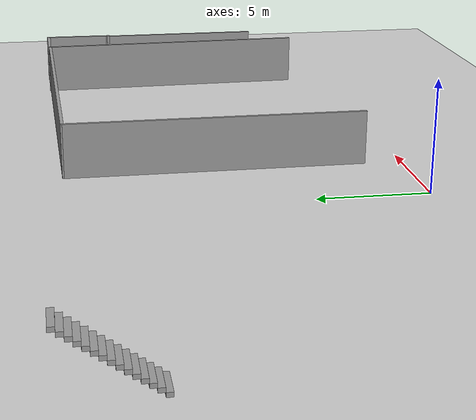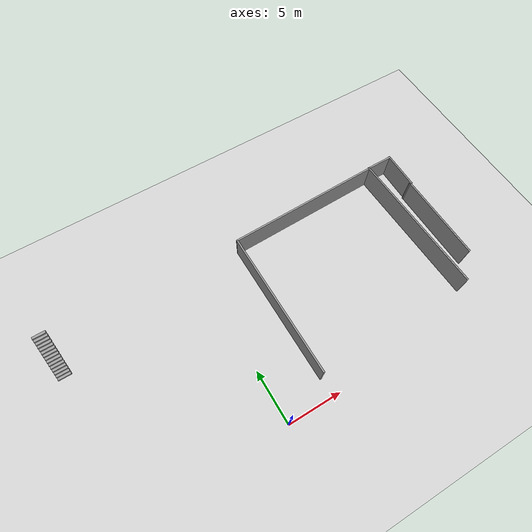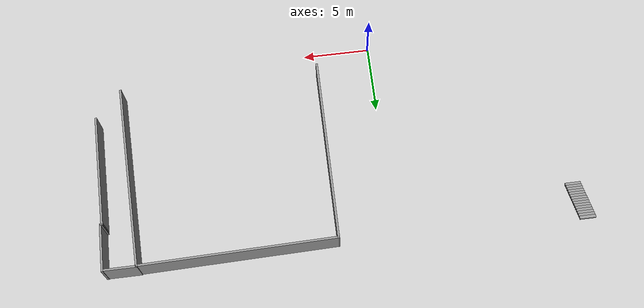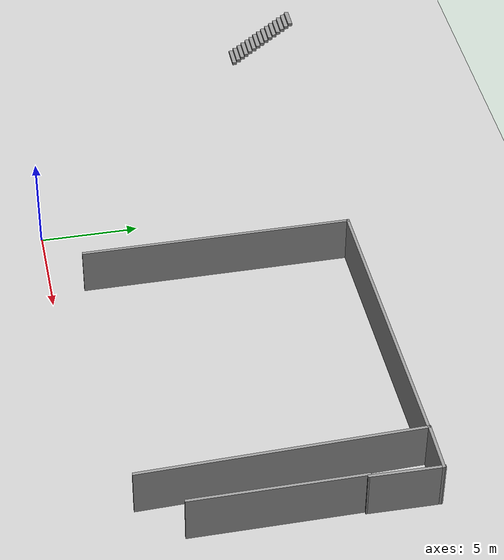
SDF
<sdf version="1.6">
 <world name="default">
  <model name="ground_plane">
   <static>1</static>
   <link name="link">
    <collision name="collision">
     <geometry><plane><normal>0 0 1</normal><size>100 100</size></plane></geometry>
     <surface>
      <contact><collide_bitmask>65535</collide_bitmask></contact>
      <friction><ode><mu>100</mu><mu2>50</mu2></ode></friction>
     </surface>
    </collision>
    <visual name="visual">
     <cast_shadows>0</cast_shadows>
     <geometry><plane><normal>0 0 1</normal><size>100 100</size></plane></geometry>
     <material>
      <script><uri>file://media/materials/scripts/gazebo.material</uri><name>Gazebo/Grey</name></script>
     </material>
    </visual>
   </link>
  </model>
  <model name="six_floor">
   <link name="Stairs_1">
    <visual name="Stairs_1_Visual_4">
     <pose>-15.4859 11.9319 0.75 0 -0 -3.14159</pose>
     <geometry><box><size>1.18504 0.233333 0.166667</size></box></geometry>
     <material>
      <script><uri>file://media/materials/scripts/gazebo.material</uri><name>Gazebo/Grey</name></script>
      <ambient>1 1 1 1</ambient>
     </material>
     <meta><layer>0</layer></meta>
    </visual>
    <visual name="Stairs_1_Visual_0">
     <pose>-15.4859 10.9986 0.083333 0 -0 -3.14159</pose>
     <geometry><box><size>1.18504 0.233333 0.166667</size></box></geometry>
     <material>
      <script><uri>file://media/materials/scripts/gazebo.material</uri><name>Gazebo/Grey</name></script>
      <ambient>1 1 1 1</ambient>
     </material>
     <meta><layer>0</layer></meta>
    </visual>
    <visual name="Stairs_1_Visual_1">
     <pose>-15.4859 11.2319 0.25 0 -0 -3.14159</pose>
     <geometry><box><size>1.18504 0.233333 0.166667</size></box></geometry>
     <material>
      <script><uri>file://media/materials/scripts/gazebo.material</uri><name>Gazebo/Grey</name></script>
      <ambient>1 1 1 1</ambient>
     </material>
     <meta><layer>0</layer></meta>
    </visual>
    <visual name="Stairs_1_Visual_2">
     <pose>-15.4859 11.4653 0.416667 0 -0 -3.14159</pose>
     <geometry><box><size>1.18504 0.233333 0.166667</size></box></geometry>
     <material>
      <script><uri>file://media/materials/scripts/gazebo.material</uri><name>Gazebo/Grey</name></script>
      <ambient>1 1 1 1</ambient>
     </material>
     <meta><layer>0</layer></meta>
    </visual>
    <visual name="Stairs_1_Visual_3">
     <pose>-15.4859 11.6986 0.583333 0 -0 -3.14159</pose>
     <geometry><box><size>1.18504 0.233333 0.166667</size></box></geometry>
     <material>
      <script><uri>file://media/materials/scripts/gazebo.material</uri><name>Gazebo/Grey</name></script>
      <ambient>1 1 1 1</ambient>
     </material>
     <meta><layer>0</layer></meta>
    </visual>
    <visual name="Stairs_1_Visual_5">
     <pose>-15.4859 12.1653 0.916667 0 -0 -3.14159</pose>
     <geometry><box><size>1.18504 0.233333 0.166667</size></box></geometry>
     <material>
      <script><uri>file://media/materials/scripts/gazebo.material</uri><name>Gazebo/Grey</name></script>
      <ambient>1 1 1 1</ambient>
     </material>
     <meta><layer>0</layer></meta>
    </visual>
    <visual name="Stairs_1_Visual_6">
     <pose>-15.4859 12.3986 1.08333 0 -0 -3.14159</pose>
     <geometry><box><size>1.18504 0.233333 0.166667</size></box></geometry>
     <material>
      <script><uri>file://media/materials/scripts/gazebo.material</uri><name>Gazebo/Grey</name></script>
      <ambient>1 1 1 1</ambient>
     </material>
     <meta><layer>0</layer></meta>
    </visual>
    <visual name="Stairs_1_Visual_7">
     <pose>-15.4859 12.6319 1.25 0 -0 -3.14159</pose>
     <geometry><box><size>1.18504 0.233333 0.166667</size></box></geometry>
     <material>
      <script><uri>file://media/materials/scripts/gazebo.material</uri><name>Gazebo/Grey</name></script>
      <ambient>1 1 1 1</ambient>
     </material>
     <meta><layer>0</layer></meta>
    </visual>
    <visual name="Stairs_1_Visual_8">
     <pose>-15.4859 12.8653 1.41667 0 -0 -3.14159</pose>
     <geometry><box><size>1.18504 0.233333 0.166667</size></box></geometry>
     <material>
      <script><uri>file://media/materials/scripts/gazebo.material</uri><name>Gazebo/Grey</name></script>
      <ambient>1 1 1 1</ambient>
     </material>
     <meta><layer>0</layer></meta>
    </visual>
    <visual name="Stairs_1_Visual_9">
     <pose>-15.4859 13.0986 1.58333 0 -0 -3.14159</pose>
     <geometry><box><size>1.18504 0.233333 0.166667</size></box></geometry>
     <material>
      <script><uri>file://media/materials/scripts/gazebo.material</uri><name>Gazebo/Grey</name></script>
      <ambient>1 1 1 1</ambient>
     </material>
     <meta><layer>0</layer></meta>
    </visual>
    <visual name="Stairs_1_Visual_10">
     <pose>-15.4859 13.3319 1.75 0 -0 -3.14159</pose>
     <geometry><box><size>1.18504 0.233333 0.166667</size></box></geometry>
     <material>
      <script><uri>file://media/materials/scripts/gazebo.material</uri><name>Gazebo/Grey</name></script>
      <ambient>1 1 1 1</ambient>
     </material>
     <meta><layer>0</layer></meta>
    </visual>
    <visual name="Stairs_1_Visual_11">
     <pose>-15.4859 13.5653 1.91667 0 -0 -3.14159</pose>
     <geometry><box><size>1.18504 0.233333 0.166667</size></box></geometry>
     <material>
      <script><uri>file://media/materials/scripts/gazebo.material</uri><name>Gazebo/Grey</name></script>
      <ambient>1 1 1 1</ambient>
     </material>
     <meta><layer>0</layer></meta>
    </visual>
    <visual name="Stairs_1_Visual_12">
     <pose>-15.4859 13.7986 2.08333 0 -0 -3.14159</pose>
     <geometry><box><size>1.18504 0.233333 0.166667</size></box></geometry>
     <material>
      <script><uri>file://media/materials/scripts/gazebo.material</uri><name>Gazebo/Grey</name></script>
      <ambient>1 1 1 1</ambient>
     </material>
     <meta><layer>0</layer></meta>
    </visual>
    <visual name="Stairs_1_Visual_13">
     <pose>-15.4859 14.0319 2.25 0 -0 -3.14159</pose>
     <geometry><box><size>1.18504 0.233333 0.166667</size></box></geometry>
     <material>
      <script><uri>file://media/materials/scripts/gazebo.material</uri><name>Gazebo/Grey</name></script>
      <ambient>1 1 1 1</ambient>
     </material>
     <meta><layer>0</layer></meta>
    </visual>
    <visual name="Stairs_1_Visual_14">
     <pose>-15.4859 14.2653 2.41667 0 -0 -3.14159</pose>
     <geometry><box><size>1.18504 0.233333 0.166667</size></box></geometry>
     <material>
      <script><uri>file://media/materials/scripts/gazebo.material</uri><name>Gazebo/Grey</name></script>
      <ambient>1 1 1 1</ambient>
     </material>
     <meta><layer>0</layer></meta>
    </visual>
    <collision name="Stairs_1_Collision_8">
     <pose>-15.4859 12.8653 1.41667 0 0 -3.14159</pose>
     <geometry><box><size>1.18504 0.233333 0.166667</size></box></geometry>
     <surface>
      <friction>
       <ode><mu>1</mu><mu2>1</mu2><fdir1>0 0 0</fdir1><slip1>0</slip1><slip2>0</slip2></ode>
       <torsional>
        <coefficient>1</coefficient>
        <patch_radius>0</patch_radius>
        <surface_radius>0</surface_radius>
        <use_patch_radius>1</use_patch_radius>
        <ode><slip>0</slip></ode>
       </torsional>
      </friction>
      <bounce><restitution_coefficient>0</restitution_coefficient><threshold>1e+06</threshold></bounce>
      <contact>
       <collide_without_contact>0</collide_without_contact>
       <collide_without_contact_bitmask>1</collide_without_contact_bitmask>
       <collide_bitmask>1</collide_bitmask>
       <ode>
        <soft_cfm>0</soft_cfm>
        <soft_erp>0.2</soft_erp>
        <kp>1e+13</kp>
        <kd>1</kd>
        <max_vel>0.01</max_vel>
        <min_depth>0</min_depth>
       </ode>
       <bullet>
        <split_impulse>1</split_impulse>
        <split_impulse_penetration_threshold>-0.01</split_impulse_penetration_threshold>
        <soft_cfm>0</soft_cfm>
        <soft_erp>0.2</soft_erp>
        <kp>1e+13</kp>
        <kd>1</kd>
       </bullet>
      </contact>
     </surface>
    </collision>
    <collision name="Stairs_1_Collision_0">
     <pose>-15.4859 10.9986 0.083333 0 0 -3.14159</pose>
     <geometry><box><size>1.18504 0.233333 0.166667</size></box></geometry>
     <surface>
      <friction>
       <ode><mu>1</mu><mu2>1</mu2><fdir1>0 0 0</fdir1><slip1>0</slip1><slip2>0</slip2></ode>
       <torsional>
        <coefficient>1</coefficient>
        <patch_radius>0</patch_radius>
        <surface_radius>0</surface_radius>
        <use_patch_radius>1</use_patch_radius>
        <ode><slip>0</slip></ode>
       </torsional>
      </friction>
      <bounce><restitution_coefficient>0</restitution_coefficient><threshold>1e+06</threshold></bounce>
      <contact>
       <collide_without_contact>0</collide_without_contact>
       <collide_without_contact_bitmask>1</collide_without_contact_bitmask>
       <collide_bitmask>1</collide_bitmask>
       <ode>
        <soft_cfm>0</soft_cfm>
        <soft_erp>0.2</soft_erp>
        <kp>1e+13</kp>
        <kd>1</kd>
        <max_vel>0.01</max_vel>
        <min_depth>0</min_depth>
       </ode>
       <bullet>
        <split_impulse>1</split_impulse>
        <split_impulse_penetration_threshold>-0.01</split_impulse_penetration_threshold>
        <soft_cfm>0</soft_cfm>
        <soft_erp>0.2</soft_erp>
        <kp>1e+13</kp>
        <kd>1</kd>
       </bullet>
      </contact>
     </surface>
    </collision>
    <collision name="Stairs_1_Collision_1">
     <pose>-15.4859 11.2319 0.25 0 0 -3.14159</pose>
     <geometry><box><size>1.18504 0.233333 0.166667</size></box></geometry>
     <surface>
      <friction>
       <ode><mu>1</mu><mu2>1</mu2><fdir1>0 0 0</fdir1><slip1>0</slip1><slip2>0</slip2></ode>
       <torsional>
        <coefficient>1</coefficient>
        <patch_radius>0</patch_radius>
        <surface_radius>0</surface_radius>
        <use_patch_radius>1</use_patch_radius>
        <ode><slip>0</slip></ode>
       </torsional>
      </friction>
      <bounce><restitution_coefficient>0</restitution_coefficient><threshold>1e+06</threshold></bounce>
      <contact>
       <collide_without_contact>0</collide_without_contact>
       <collide_without_contact_bitmask>1</collide_without_contact_bitmask>
       <collide_bitmask>1</collide_bitmask>
       <ode>
        <soft_cfm>0</soft_cfm>
        <soft_erp>0.2</soft_erp>
        <kp>1e+13</kp>
        <kd>1</kd>
        <max_vel>0.01</max_vel>
        <min_depth>0</min_depth>
       </ode>
       <bullet>
        <split_impulse>1</split_impulse>
        <split_impulse_penetration_threshold>-0.01</split_impulse_penetration_threshold>
        <soft_cfm>0</soft_cfm>
        <soft_erp>0.2</soft_erp>
        <kp>1e+13</kp>
        <kd>1</kd>
       </bullet>
      </contact>
     </surface>
    </collision>
    <collision name="Stairs_1_Collision_2">
     <pose>-15.4859 11.4653 0.416667 0 0 -3.14159</pose>
     <geometry><box><size>1.18504 0.233333 0.166667</size></box></geometry>
     <surface>
      <friction>
       <ode><mu>1</mu><mu2>1</mu2><fdir1>0 0 0</fdir1><slip1>0</slip1><slip2>0</slip2></ode>
       <torsional>
        <coefficient>1</coefficient>
        <patch_radius>0</patch_radius>
        <surface_radius>0</surface_radius>
        <use_patch_radius>1</use_patch_radius>
        <ode><slip>0</slip></ode>
       </torsional>
      </friction>
      <bounce><restitution_coefficient>0</restitution_coefficient><threshold>1e+06</threshold></bounce>
      <contact>
       <collide_without_contact>0</collide_without_contact>
       <collide_without_contact_bitmask>1</collide_without_contact_bitmask>
       <collide_bitmask>1</collide_bitmask>
       <ode>
        <soft_cfm>0</soft_cfm>
        <soft_erp>0.2</soft_erp>
        <kp>1e+13</kp>
        <kd>1</kd>
        <max_vel>0.01</max_vel>
        <min_depth>0</min_depth>
       </ode>
       <bullet>
        <split_impulse>1</split_impulse>
        <split_impulse_penetration_threshold>-0.01</split_impulse_penetration_threshold>
        <soft_cfm>0</soft_cfm>
        <soft_erp>0.2</soft_erp>
        <kp>1e+13</kp>
        <kd>1</kd>
       </bullet>
      </contact>
     </surface>
    </collision>
    <collision name="Stairs_1_Collision_3">
     <pose>-15.4859 11.6986 0.583333 0 0 -3.14159</pose>
     <geometry><box><size>1.18504 0.233333 0.166667</size></box></geometry>
     <surface>
      <friction>
       <ode><mu>1</mu><mu2>1</mu2><fdir1>0 0 0</fdir1><slip1>0</slip1><slip2>0</slip2></ode>
       <torsional>
        <coefficient>1</coefficient>
        <patch_radius>0</patch_radius>
        <surface_radius>0</surface_radius>
        <use_patch_radius>1</use_patch_radius>
        <ode><slip>0</slip></ode>
       </torsional>
      </friction>
      <bounce><restitution_coefficient>0</restitution_coefficient><threshold>1e+06</threshold></bounce>
      <contact>
       <collide_without_contact>0</collide_without_contact>
       <collide_without_contact_bitmask>1</collide_without_contact_bitmask>
       <collide_bitmask>1</collide_bitmask>
       <ode>
        <soft_cfm>0</soft_cfm>
        <soft_erp>0.2</soft_erp>
        <kp>1e+13</kp>
        <kd>1</kd>
        <max_vel>0.01</max_vel>
        <min_depth>0</min_depth>
       </ode>
       <bullet>
        <split_impulse>1</split_impulse>
        <split_impulse_penetration_threshold>-0.01</split_impulse_penetration_threshold>
        <soft_cfm>0</soft_cfm>
        <soft_erp>0.2</soft_erp>
        <kp>1e+13</kp>
        <kd>1</kd>
       </bullet>
      </contact>
     </surface>
    </collision>
    <collision name="Stairs_1_Collision_4">
     <pose>-15.4859 11.9319 0.75 0 0 -3.14159</pose>
     <geometry><box><size>1.18504 0.233333 0.166667</size></box></geometry>
     <surface>
      <friction>
       <ode><mu>1</mu><mu2>1</mu2><fdir1>0 0 0</fdir1><slip1>0</slip1><slip2>0</slip2></ode>
       <torsional>
        <coefficient>1</coefficient>
        <patch_radius>0</patch_radius>
        <surface_radius>0</surface_radius>
        <use_patch_radius>1</use_patch_radius>
        <ode><slip>0</slip></ode>
       </torsional>
      </friction>
      <bounce><restitution_coefficient>0</restitution_coefficient><threshold>1e+06</threshold></bounce>
      <contact>
       <collide_without_contact>0</collide_without_contact>
       <collide_without_contact_bitmask>1</collide_without_contact_bitmask>
       <collide_bitmask>1</collide_bitmask>
       <ode>
        <soft_cfm>0</soft_cfm>
        <soft_erp>0.2</soft_erp>
        <kp>1e+13</kp>
        <kd>1</kd>
        <max_vel>0.01</max_vel>
        <min_depth>0</min_depth>
       </ode>
       <bullet>
        <split_impulse>1</split_impulse>
        <split_impulse_penetration_threshold>-0.01</split_impulse_penetration_threshold>
        <soft_cfm>0</soft_cfm>
        <soft_erp>0.2</soft_erp>
        <kp>1e+13</kp>
        <kd>1</kd>
       </bullet>
      </contact>
     </surface>
    </collision>
    <collision name="Stairs_1_Collision_5">
     <pose>-15.4859 12.1653 0.916667 0 0 -3.14159</pose>
     <geometry><box><size>1.18504 0.233333 0.166667</size></box></geometry>
     <surface>
      <friction>
       <ode><mu>1</mu><mu2>1</mu2><fdir1>0 0 0</fdir1><slip1>0</slip1><slip2>0</slip2></ode>
       <torsional>
        <coefficient>1</coefficient>
        <patch_radius>0</patch_radius>
        <surface_radius>0</surface_radius>
        <use_patch_radius>1</use_patch_radius>
        <ode><slip>0</slip></ode>
       </torsional>
      </friction>
      <bounce><restitution_coefficient>0</restitution_coefficient><threshold>1e+06</threshold></bounce>
      <contact>
       <collide_without_contact>0</collide_without_contact>
       <collide_without_contact_bitmask>1</collide_without_contact_bitmask>
       <collide_bitmask>1</collide_bitmask>
       <ode>
        <soft_cfm>0</soft_cfm>
        <soft_erp>0.2</soft_erp>
        <kp>1e+13</kp>
        <kd>1</kd>
        <max_vel>0.01</max_vel>
        <min_depth>0</min_depth>
       </ode>
       <bullet>
        <split_impulse>1</split_impulse>
        <split_impulse_penetration_threshold>-0.01</split_impulse_penetration_threshold>
        <soft_cfm>0</soft_cfm>
        <soft_erp>0.2</soft_erp>
        <kp>1e+13</kp>
        <kd>1</kd>
       </bullet>
      </contact>
     </surface>
    </collision>
    <collision name="Stairs_1_Collision_6">
     <pose>-15.4859 12.3986 1.08333 0 0 -3.14159</pose>
     <geometry><box><size>1.18504 0.233333 0.166667</size></box></geometry>
     <surface>
      <friction>
       <ode><mu>1</mu><mu2>1</mu2><fdir1>0 0 0</fdir1><slip1>0</slip1><slip2>0</slip2></ode>
       <torsional>
        <coefficient>1</coefficient>
        <patch_radius>0</patch_radius>
        <surface_radius>0</surface_radius>
        <use_patch_radius>1</use_patch_radius>
        <ode><slip>0</slip></ode>
       </torsional>
      </friction>
      <bounce><restitution_coefficient>0</restitution_coefficient><threshold>1e+06</threshold></bounce>
      <contact>
       <collide_without_contact>0</collide_without_contact>
       <collide_without_contact_bitmask>1</collide_without_contact_bitmask>
       <collide_bitmask>1</collide_bitmask>
       <ode>
        <soft_cfm>0</soft_cfm>
        <soft_erp>0.2</soft_erp>
        <kp>1e+13</kp>
        <kd>1</kd>
        <max_vel>0.01</max_vel>
        <min_depth>0</min_depth>
       </ode>
       <bullet>
        <split_impulse>1</split_impulse>
        <split_impulse_penetration_threshold>-0.01</split_impulse_penetration_threshold>
        <soft_cfm>0</soft_cfm>
        <soft_erp>0.2</soft_erp>
        <kp>1e+13</kp>
        <kd>1</kd>
       </bullet>
      </contact>
     </surface>
    </collision>
    <collision name="Stairs_1_Collision_7">
     <pose>-15.4859 12.6319 1.25 0 0 -3.14159</pose>
     <geometry><box><size>1.18504 0.233333 0.166667</size></box></geometry>
     <surface>
      <friction>
       <ode><mu>1</mu><mu2>1</mu2><fdir1>0 0 0</fdir1><slip1>0</slip1><slip2>0</slip2></ode>
       <torsional>
        <coefficient>1</coefficient>
        <patch_radius>0</patch_radius>
        <surface_radius>0</surface_radius>
        <use_patch_radius>1</use_patch_radius>
        <ode><slip>0</slip></ode>
       </torsional>
      </friction>
      <bounce><restitution_coefficient>0</restitution_coefficient><threshold>1e+06</threshold></bounce>
      <contact>
       <collide_without_contact>0</collide_without_contact>
       <collide_without_contact_bitmask>1</collide_without_contact_bitmask>
       <collide_bitmask>1</collide_bitmask>
       <ode>
        <soft_cfm>0</soft_cfm>
        <soft_erp>0.2</soft_erp>
        <kp>1e+13</kp>
        <kd>1</kd>
        <max_vel>0.01</max_vel>
        <min_depth>0</min_depth>
       </ode>
       <bullet>
        <split_impulse>1</split_impulse>
        <split_impulse_penetration_threshold>-0.01</split_impulse_penetration_threshold>
        <soft_cfm>0</soft_cfm>
        <soft_erp>0.2</soft_erp>
        <kp>1e+13</kp>
        <kd>1</kd>
       </bullet>
      </contact>
     </surface>
    </collision>
    <collision name="Stairs_1_Collision_10">
     <pose>-15.4859 13.3319 1.75 0 0 -3.14159</pose>
     <geometry><box><size>1.18504 0.233333 0.166667</size></box></geometry>
     <surface>
      <friction>
       <ode><mu>1</mu><mu2>1</mu2><fdir1>0 0 0</fdir1><slip1>0</slip1><slip2>0</slip2></ode>
       <torsional>
        <coefficient>1</coefficient>
        <patch_radius>0</patch_radius>
        <surface_radius>0</surface_radius>
        <use_patch_radius>1</use_patch_radius>
        <ode><slip>0</slip></ode>
       </torsional>
      </friction>
      <bounce><restitution_coefficient>0</restitution_coefficient><threshold>1e+06</threshold></bounce>
      <contact>
       <collide_without_contact>0</collide_without_contact>
       <collide_without_contact_bitmask>1</collide_without_contact_bitmask>
       <collide_bitmask>1</collide_bitmask>
       <ode>
        <soft_cfm>0</soft_cfm>
        <soft_erp>0.2</soft_erp>
        <kp>1e+13</kp>
        <kd>1</kd>
        <max_vel>0.01</max_vel>
        <min_depth>0</min_depth>
       </ode>
       <bullet>
        <split_impulse>1</split_impulse>
        <split_impulse_penetration_threshold>-0.01</split_impulse_penetration_threshold>
        <soft_cfm>0</soft_cfm>
        <soft_erp>0.2</soft_erp>
        <kp>1e+13</kp>
        <kd>1</kd>
       </bullet>
      </contact>
     </surface>
    </collision>
    <collision name="Stairs_1_Collision_9">
     <pose>-15.4859 13.0986 1.58333 0 0 -3.14159</pose>
     <geometry><box><size>1.18504 0.233333 0.166667</size></box></geometry>
     <surface>
      <friction>
       <ode><mu>1</mu><mu2>1</mu2><fdir1>0 0 0</fdir1><slip1>0</slip1><slip2>0</slip2></ode>
       <torsional>
        <coefficient>1</coefficient>
        <patch_radius>0</patch_radius>
        <surface_radius>0</surface_radius>
        <use_patch_radius>1</use_patch_radius>
        <ode><slip>0</slip></ode>
       </torsional>
      </friction>
      <bounce><restitution_coefficient>0</restitution_coefficient><threshold>1e+06</threshold></bounce>
      <contact>
       <collide_without_contact>0</collide_without_contact>
       <collide_without_contact_bitmask>1</collide_without_contact_bitmask>
       <collide_bitmask>1</collide_bitmask>
       <ode>
        <soft_cfm>0</soft_cfm>
        <soft_erp>0.2</soft_erp>
        <kp>1e+13</kp>
        <kd>1</kd>
        <max_vel>0.01</max_vel>
        <min_depth>0</min_depth>
       </ode>
       <bullet>
        <split_impulse>1</split_impulse>
        <split_impulse_penetration_threshold>-0.01</split_impulse_penetration_threshold>
        <soft_cfm>0</soft_cfm>
        <soft_erp>0.2</soft_erp>
        <kp>1e+13</kp>
        <kd>1</kd>
       </bullet>
      </contact>
     </surface>
    </collision>
    <collision name="Stairs_1_Collision_11">
     <pose>-15.4859 13.5653 1.91667 0 0 -3.14159</pose>
     <geometry><box><size>1.18504 0.233333 0.166667</size></box></geometry>
     <surface>
      <friction>
       <ode><mu>1</mu><mu2>1</mu2><fdir1>0 0 0</fdir1><slip1>0</slip1><slip2>0</slip2></ode>
       <torsional>
        <coefficient>1</coefficient>
        <patch_radius>0</patch_radius>
        <surface_radius>0</surface_radius>
        <use_patch_radius>1</use_patch_radius>
        <ode><slip>0</slip></ode>
       </torsional>
      </friction>
      <bounce><restitution_coefficient>0</restitution_coefficient><threshold>1e+06</threshold></bounce>
      <contact>
       <collide_without_contact>0</collide_without_contact>
       <collide_without_contact_bitmask>1</collide_without_contact_bitmask>
       <collide_bitmask>1</collide_bitmask>
       <ode>
        <soft_cfm>0</soft_cfm>
        <soft_erp>0.2</soft_erp>
        <kp>1e+13</kp>
        <kd>1</kd>
        <max_vel>0.01</max_vel>
        <min_depth>0</min_depth>
       </ode>
       <bullet>
        <split_impulse>1</split_impulse>
        <split_impulse_penetration_threshold>-0.01</split_impulse_penetration_threshold>
        <soft_cfm>0</soft_cfm>
        <soft_erp>0.2</soft_erp>
        <kp>1e+13</kp>
        <kd>1</kd>
       </bullet>
      </contact>
     </surface>
    </collision>
    <collision name="Stairs_1_Collision_12">
     <pose>-15.4859 13.7986 2.08333 0 0 -3.14159</pose>
     <geometry><box><size>1.18504 0.233333 0.166667</size></box></geometry>
     <surface>
      <friction>
       <ode><mu>1</mu><mu2>1</mu2><fdir1>0 0 0</fdir1><slip1>0</slip1><slip2>0</slip2></ode>
       <torsional>
        <coefficient>1</coefficient>
        <patch_radius>0</patch_radius>
        <surface_radius>0</surface_radius>
        <use_patch_radius>1</use_patch_radius>
        <ode><slip>0</slip></ode>
       </torsional>
      </friction>
      <bounce><restitution_coefficient>0</restitution_coefficient><threshold>1e+06</threshold></bounce>
      <contact>
       <collide_without_contact>0</collide_without_contact>
       <collide_without_contact_bitmask>1</collide_without_contact_bitmask>
       <collide_bitmask>1</collide_bitmask>
       <ode>
        <soft_cfm>0</soft_cfm>
        <soft_erp>0.2</soft_erp>
        <kp>1e+13</kp>
        <kd>1</kd>
        <max_vel>0.01</max_vel>
        <min_depth>0</min_depth>
       </ode>
       <bullet>
        <split_impulse>1</split_impulse>
        <split_impulse_penetration_threshold>-0.01</split_impulse_penetration_threshold>
        <soft_cfm>0</soft_cfm>
        <soft_erp>0.2</soft_erp>
        <kp>1e+13</kp>
        <kd>1</kd>
       </bullet>
      </contact>
     </surface>
    </collision>
    <collision name="Stairs_1_Collision_13">
     <pose>-15.4859 14.0319 2.25 0 0 -3.14159</pose>
     <geometry><box><size>1.18504 0.233333 0.166667</size></box></geometry>
     <surface>
      <friction>
       <ode><mu>1</mu><mu2>1</mu2><fdir1>0 0 0</fdir1><slip1>0</slip1><slip2>0</slip2></ode>
       <torsional>
        <coefficient>1</coefficient>
        <patch_radius>0</patch_radius>
        <surface_radius>0</surface_radius>
        <use_patch_radius>1</use_patch_radius>
        <ode><slip>0</slip></ode>
       </torsional>
      </friction>
      <bounce><restitution_coefficient>0</restitution_coefficient><threshold>1e+06</threshold></bounce>
      <contact>
       <collide_without_contact>0</collide_without_contact>
       <collide_without_contact_bitmask>1</collide_without_contact_bitmask>
       <collide_bitmask>1</collide_bitmask>
       <ode>
        <soft_cfm>0</soft_cfm>
        <soft_erp>0.2</soft_erp>
        <kp>1e+13</kp>
        <kd>1</kd>
        <max_vel>0.01</max_vel>
        <min_depth>0</min_depth>
       </ode>
       <bullet>
        <split_impulse>1</split_impulse>
        <split_impulse_penetration_threshold>-0.01</split_impulse_penetration_threshold>
        <soft_cfm>0</soft_cfm>
        <soft_erp>0.2</soft_erp>
        <kp>1e+13</kp>
        <kd>1</kd>
       </bullet>
      </contact>
     </surface>
    </collision>
    <collision name="Stairs_1_Collision_14">
     <pose>-15.4859 14.2653 2.41667 0 0 -3.14159</pose>
     <geometry><box><size>1.18504 0.233333 0.166667</size></box></geometry>
     <surface>
      <friction>
       <ode><mu>1</mu><mu2>1</mu2><fdir1>0 0 0</fdir1><slip1>0</slip1><slip2>0</slip2></ode>
       <torsional>
        <coefficient>1</coefficient>
        <patch_radius>0</patch_radius>
        <surface_radius>0</surface_radius>
        <use_patch_radius>1</use_patch_radius>
        <ode><slip>0</slip></ode>
       </torsional>
      </friction>
      <bounce><restitution_coefficient>0</restitution_coefficient><threshold>1e+06</threshold></bounce>
      <contact>
       <collide_without_contact>0</collide_without_contact>
       <collide_without_contact_bitmask>1</collide_without_contact_bitmask>
       <collide_bitmask>1</collide_bitmask>
       <ode>
        <soft_cfm>0</soft_cfm>
        <soft_erp>0.2</soft_erp>
        <kp>1e+13</kp>
        <kd>1</kd>
        <max_vel>0.01</max_vel>
        <min_depth>0</min_depth>
       </ode>
       <bullet>
        <split_impulse>1</split_impulse>
        <split_impulse_penetration_threshold>-0.01</split_impulse_penetration_threshold>
        <soft_cfm>0</soft_cfm>
        <soft_erp>0.2</soft_erp>
        <kp>1e+13</kp>
        <kd>1</kd>
       </bullet>
      </contact>
     </surface>
    </collision>
   </link>
   <link name="Wall_109">
    <pose>19.4835 6.39823 0 0 -0 1.57224</pose>
    <visual name="Wall_109_Visual">
     <pose>0 0 1.25 0 -0 0</pose>
     <geometry><box><size>8.40942 0.15 2.5</size></box></geometry>
     <material>
      <script><uri>file://media/materials/scripts/gazebo.material</uri><name>Gazebo/Grey</name></script>
      <ambient>1 1 1 1</ambient>
     </material>
     <meta><layer>0</layer></meta>
    </visual>
    <collision name="Wall_109_Collision">
     <pose>0 0 1.25 0 -0 0</pose>
     <geometry><box><size>8.40942 0.15 2.5</size></box></geometry>
     <surface>
      <friction>
       <ode><mu>1</mu><mu2>1</mu2><fdir1>0 0 0</fdir1><slip1>0</slip1><slip2>0</slip2></ode>
       <torsional>
        <coefficient>1</coefficient>
        <patch_radius>0</patch_radius>
        <surface_radius>0</surface_radius>
        <use_patch_radius>1</use_patch_radius>
        <ode><slip>0</slip></ode>
       </torsional>
      </friction>
      <bounce><restitution_coefficient>0</restitution_coefficient><threshold>1e+06</threshold></bounce>
      <contact>
       <collide_without_contact>0</collide_without_contact>
       <collide_without_contact_bitmask>1</collide_without_contact_bitmask>
       <collide_bitmask>1</collide_bitmask>
       <ode>
        <soft_cfm>0</soft_cfm>
        <soft_erp>0.2</soft_erp>
        <kp>1e+13</kp>
        <kd>1</kd>
        <max_vel>0.01</max_vel>
        <min_depth>0</min_depth>
       </ode>
       <bullet>
        <split_impulse>1</split_impulse>
        <split_impulse_penetration_threshold>-0.01</split_impulse_penetration_threshold>
        <soft_cfm>0</soft_cfm>
        <soft_erp>0.2</soft_erp>
        <kp>1e+13</kp>
        <kd>1</kd>
       </bullet>
      </contact>
     </surface>
    </collision>
   </link>
   <link name="Wall_110">
    <pose>19.5332 10.4882 0 0 -0 0</pose>
    <visual name="Wall_110_Visual">
     <pose>0 0 1.25 0 -0 0</pose>
     <geometry><box><size>0.261355 0.15 2.5</size></box></geometry>
     <material>
      <script><uri>file://media/materials/scripts/gazebo.material</uri><name>Gazebo/Grey</name></script>
      <ambient>1 1 1 1</ambient>
     </material>
     <meta><layer>0</layer></meta>
    </visual>
    <collision name="Wall_110_Collision">
     <pose>0 0 1.25 0 -0 0</pose>
     <geometry><box><size>0.261355 0.15 2.5</size></box></geometry>
     <surface>
      <friction>
       <ode><mu>1</mu><mu2>1</mu2><fdir1>0 0 0</fdir1><slip1>0</slip1><slip2>0</slip2></ode>
       <torsional>
        <coefficient>1</coefficient>
        <patch_radius>0</patch_radius>
        <surface_radius>0</surface_radius>
        <use_patch_radius>1</use_patch_radius>
        <ode><slip>0</slip></ode>
       </torsional>
      </friction>
      <bounce><restitution_coefficient>0</restitution_coefficient><threshold>1e+06</threshold></bounce>
      <contact>
       <collide_without_contact>0</collide_without_contact>
       <collide_without_contact_bitmask>1</collide_without_contact_bitmask>
       <collide_bitmask>1</collide_bitmask>
       <ode>
        <soft_cfm>0</soft_cfm>
        <soft_erp>0.2</soft_erp>
        <kp>1e+13</kp>
        <kd>1</kd>
        <max_vel>0.01</max_vel>
        <min_depth>0</min_depth>
       </ode>
       <bullet>
        <split_impulse>1</split_impulse>
        <split_impulse_penetration_threshold>-0.01</split_impulse_penetration_threshold>
        <soft_cfm>0</soft_cfm>
        <soft_erp>0.2</soft_erp>
        <kp>1e+13</kp>
        <kd>1</kd>
       </bullet>
      </contact>
     </surface>
    </collision>
   </link>
   <link name="Wall_112">
    <pose>19.617 12.2059 0 0 -0 1.55443</pose>
    <visual name="Wall_112_Visual">
     <pose>0 0 1.25 0 -0 0</pose>
     <geometry><box><size>3.58602 0.15 2.5</size></box></geometry>
     <material>
      <script><uri>file://media/materials/scripts/gazebo.material</uri><name>Gazebo/Grey</name></script>
      <ambient>1 1 1 1</ambient>
     </material>
     <meta><layer>0</layer></meta>
    </visual>
    <collision name="Wall_112_Collision">
     <pose>0 0 1.25 0 -0 0</pose>
     <geometry><box><size>3.58602 0.15 2.5</size></box></geometry>
     <surface>
      <friction>
       <ode><mu>1</mu><mu2>1</mu2><fdir1>0 0 0</fdir1><slip1>0</slip1><slip2>0</slip2></ode>
       <torsional>
        <coefficient>1</coefficient>
        <patch_radius>0</patch_radius>
        <surface_radius>0</surface_radius>
        <use_patch_radius>1</use_patch_radius>
        <ode><slip>0</slip></ode>
       </torsional>
      </friction>
      <bounce><restitution_coefficient>0</restitution_coefficient><threshold>1e+06</threshold></bounce>
      <contact>
       <collide_without_contact>0</collide_without_contact>
       <collide_without_contact_bitmask>1</collide_without_contact_bitmask>
       <collide_bitmask>1</collide_bitmask>
       <ode>
        <soft_cfm>0</soft_cfm>
        <soft_erp>0.2</soft_erp>
        <kp>1e+13</kp>
        <kd>1</kd>
        <max_vel>0.01</max_vel>
        <min_depth>0</min_depth>
       </ode>
       <bullet>
        <split_impulse>1</split_impulse>
        <split_impulse_penetration_threshold>-0.01</split_impulse_penetration_threshold>
        <soft_cfm>0</soft_cfm>
        <soft_erp>0.2</soft_erp>
        <kp>1e+13</kp>
        <kd>1</kd>
       </bullet>
      </contact>
     </surface>
    </collision>
   </link>
   <link name="Wall_113">
    <pose>18.4241 13.8889 0 0 -0 3.14159</pose>
    <visual name="Wall_113_Visual">
     <pose>0 0 1.25 0 -0 0</pose>
     <geometry><box><size>2.59243 0.15 2.5</size></box></geometry>
     <material>
      <script><uri>file://media/materials/scripts/gazebo.material</uri><name>Gazebo/Grey</name></script>
      <ambient>1 1 1 1</ambient>
     </material>
     <meta><layer>0</layer></meta>
    </visual>
    <collision name="Wall_113_Collision">
     <pose>0 0 1.25 0 -0 0</pose>
     <geometry><box><size>2.59243 0.15 2.5</size></box></geometry>
     <surface>
      <friction>
       <ode><mu>1</mu><mu2>1</mu2><fdir1>0 0 0</fdir1><slip1>0</slip1><slip2>0</slip2></ode>
       <torsional>
        <coefficient>1</coefficient>
        <patch_radius>0</patch_radius>
        <surface_radius>0</surface_radius>
        <use_patch_radius>1</use_patch_radius>
        <ode><slip>0</slip></ode>
       </torsional>
      </friction>
      <bounce><restitution_coefficient>0</restitution_coefficient><threshold>1e+06</threshold></bounce>
      <contact>
       <collide_without_contact>0</collide_without_contact>
       <collide_without_contact_bitmask>1</collide_without_contact_bitmask>
       <collide_bitmask>1</collide_bitmask>
       <ode>
        <soft_cfm>0</soft_cfm>
        <soft_erp>0.2</soft_erp>
        <kp>1e+13</kp>
        <kd>1</kd>
        <max_vel>0.01</max_vel>
        <min_depth>0</min_depth>
       </ode>
       <bullet>
        <split_impulse>1</split_impulse>
        <split_impulse_penetration_threshold>-0.01</split_impulse_penetration_threshold>
        <soft_cfm>0</soft_cfm>
        <soft_erp>0.2</soft_erp>
        <kp>1e+13</kp>
        <kd>1</kd>
       </bullet>
      </contact>
     </surface>
    </collision>
   </link>
   <link name="Wall_143">
    <pose>17.3668 7.04005 0 0 0 -1.54675</pose>
    <visual name="Wall_143_Visual">
     <pose>0 0 1.25 0 -0 0</pose>
     <geometry><box><size>13.7597 0.15 2.5</size></box></geometry>
     <material>
      <script><uri>file://media/materials/scripts/gazebo.material</uri><name>Gazebo/Grey</name></script>
      <ambient>1 1 1 1</ambient>
     </material>
     <meta><layer>0</layer></meta>
    </visual>
    <collision name="Wall_143_Collision">
     <pose>0 0 1.25 0 -0 0</pose>
     <geometry><box><size>13.7597 0.15 2.5</size></box></geometry>
     <surface>
      <friction>
       <ode><mu>1</mu><mu2>1</mu2><fdir1>0 0 0</fdir1><slip1>0</slip1><slip2>0</slip2></ode>
       <torsional>
        <coefficient>1</coefficient>
        <patch_radius>0</patch_radius>
        <surface_radius>0</surface_radius>
        <use_patch_radius>1</use_patch_radius>
        <ode><slip>0</slip></ode>
       </torsional>
      </friction>
      <bounce><restitution_coefficient>0</restitution_coefficient><threshold>1e+06</threshold></bounce>
      <contact>
       <collide_without_contact>0</collide_without_contact>
       <collide_without_contact_bitmask>1</collide_without_contact_bitmask>
       <collide_bitmask>1</collide_bitmask>
       <ode>
        <soft_cfm>0</soft_cfm>
        <soft_erp>0.2</soft_erp>
        <kp>1e+13</kp>
        <kd>1</kd>
        <max_vel>0.01</max_vel>
        <min_depth>0</min_depth>
       </ode>
       <bullet>
        <split_impulse>1</split_impulse>
        <split_impulse_penetration_threshold>-0.01</split_impulse_penetration_threshold>
        <soft_cfm>0</soft_cfm>
        <soft_erp>0.2</soft_erp>
        <kp>1e+13</kp>
        <kd>1</kd>
       </bullet>
      </contact>
     </surface>
    </collision>
   </link>
   <link name="Wall_152">
    <pose>2.59557 6.74158 0 0 0 -1.5708</pose>
    <visual name="Wall_152_Visual">
     <pose>0 0 1.25 0 -0 0</pose>
     <geometry><box><size>13.75 0.15 2.5</size></box></geometry>
     <material>
      <script><uri>file://media/materials/scripts/gazebo.material</uri><name>Gazebo/Grey</name></script>
      <ambient>1 1 1 1</ambient>
     </material>
     <meta><layer>0</layer></meta>
    </visual>
    <collision name="Wall_152_Collision">
     <pose>0 0 1.25 0 -0 0</pose>
     <geometry><box><size>13.75 0.15 2.5</size></box></geometry>
     <surface>
      <friction>
       <ode><mu>1</mu><mu2>1</mu2><fdir1>0 0 0</fdir1><slip1>0</slip1><slip2>0</slip2></ode>
       <torsional>
        <coefficient>1</coefficient>
        <patch_radius>0</patch_radius>
        <surface_radius>0</surface_radius>
        <use_patch_radius>1</use_patch_radius>
        <ode><slip>0</slip></ode>
       </torsional>
      </friction>
      <bounce><restitution_coefficient>0</restitution_coefficient><threshold>1e+06</threshold></bounce>
      <contact>
       <collide_without_contact>0</collide_without_contact>
       <collide_without_contact_bitmask>1</collide_without_contact_bitmask>
       <collide_bitmask>1</collide_bitmask>
       <ode>
        <soft_cfm>0</soft_cfm>
        <soft_erp>0.2</soft_erp>
        <kp>1e+13</kp>
        <kd>1</kd>
        <max_vel>0.01</max_vel>
        <min_depth>0</min_depth>
       </ode>
       <bullet>
        <split_impulse>1</split_impulse>
        <split_impulse_penetration_threshold>-0.01</split_impulse_penetration_threshold>
        <soft_cfm>0</soft_cfm>
        <soft_erp>0.2</soft_erp>
        <kp>1e+13</kp>
        <kd>1</kd>
       </bullet>
      </contact>
     </surface>
    </collision>
   </link>
   <link name="Wall_157">
    <pose>9.89935 13.6923 0 0 -0 0.020628</pose>
    <visual name="Wall_157_Visual">
     <pose>0 0 1.25 0 -0 0</pose>
     <geometry><box><size>14.7607 0.15 2.5</size></box></geometry>
     <material>
      <script><uri>file://media/materials/scripts/gazebo.material</uri><name>Gazebo/Grey</name></script>
      <ambient>1 1 1 1</ambient>
     </material>
     <meta><layer>0</layer></meta>
    </visual>
    <collision name="Wall_157_Collision">
     <pose>0 0 1.25 0 -0 0</pose>
     <geometry><box><size>14.7607 0.15 2.5</size></box></geometry>
     <surface>
      <friction>
       <ode><mu>1</mu><mu2>1</mu2><fdir1>0 0 0</fdir1><slip1>0</slip1><slip2>0</slip2></ode>
       <torsional>
        <coefficient>1</coefficient>
        <patch_radius>0</patch_radius>
        <surface_radius>0</surface_radius>
        <use_patch_radius>1</use_patch_radius>
        <ode><slip>0</slip></ode>
       </torsional>
      </friction>
      <bounce><restitution_coefficient>0</restitution_coefficient><threshold>1e+06</threshold></bounce>
      <contact>
       <collide_without_contact>0</collide_without_contact>
       <collide_without_contact_bitmask>1</collide_without_contact_bitmask>
       <collide_bitmask>1</collide_bitmask>
       <ode>
        <soft_cfm>0</soft_cfm>
        <soft_erp>0.2</soft_erp>
        <kp>1e+13</kp>
        <kd>1</kd>
        <max_vel>0.01</max_vel>
        <min_depth>0</min_depth>
       </ode>
       <bullet>
        <split_impulse>1</split_impulse>
        <split_impulse_penetration_threshold>-0.01</split_impulse_penetration_threshold>
        <soft_cfm>0</soft_cfm>
        <soft_erp>0.2</soft_erp>
        <kp>1e+13</kp>
        <kd>1</kd>
       </bullet>
      </contact>
     </surface>
    </collision>
   </link>
   <static>1</static>
   <pose>1.59766 1.83874 0 0 -0 0</pose>
  </model>
 </world>
</sdf>
